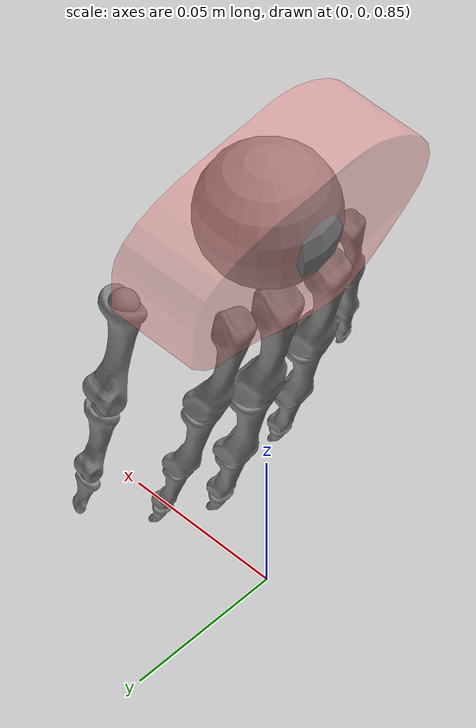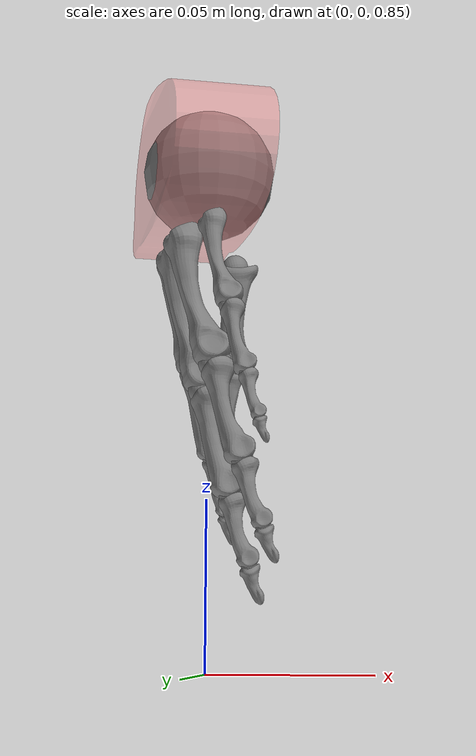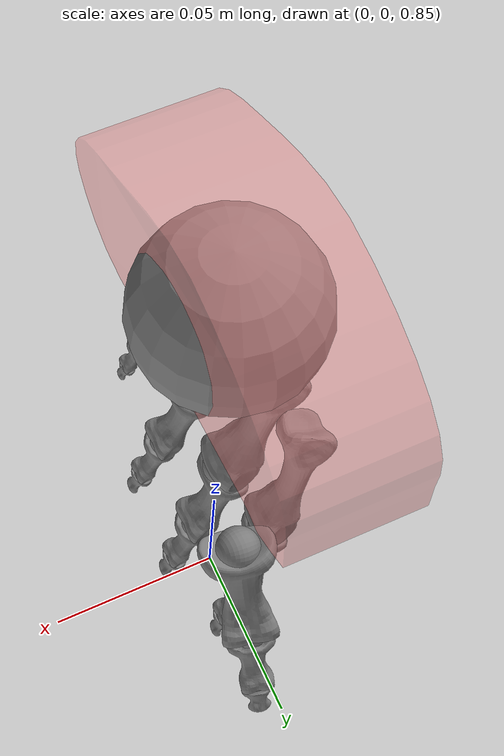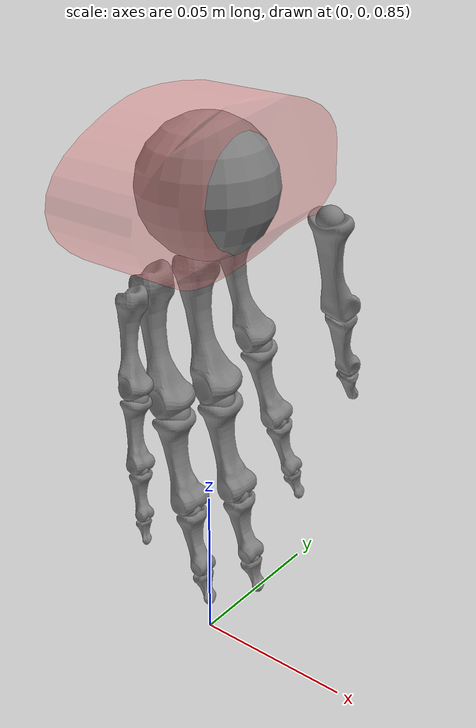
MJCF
<mujoco model="hand">
  <size memory="1G" />

  <compiler angle="radian" />

  <option solver="CG" tolerance="1e-6" timestep=".0014" integrator="implicitfast" jacobian="sparse"
    noslip_iterations="4">
  </option>

  <option cone="elliptic" impratio="100" />
  <option>
    <flag passive="disable" />
  </option>

  <visual>
    <global offwidth="1920" offheight="1080" />
    <map znear="0.001" />
    <scale jointlength="8" jointwidth="0.5" framelength="2" framewidth="0.3" />
  </visual>

  <statistic meansize="0.01" extent="1" />

  <default>
    <joint limited="true" range="0 1.8" solreflimit="0.01 1" solimplimit="0.9 0.99 0.01 "
      stiffness="0.1"
      armature="0.0001" damping="0.01" />
    <geom friction="0.9" solref="0.01 1" solimp="0.95 0.99 0.001" />
    <tendon rgba="0.5 0 0 1" />
    <general actlimited="true" actrange="0 1.7" />
    <default class="collision_primitive">
      <geom type="capsule" contype="1" conaffinity="1" condim="1" group="3" rgba="0 0.5 0.5 1"
        density="300" friction="1 1 0.0001" />
    </default>
    <default class="bone">
      <geom type="mesh" contype="0" conaffinity="0" group="5" rgba="0.5 0.5 0.5 1" density="1100" />
      <default class="light_bone">
        <geom density="300" />
      </default>
    </default>
    <default class="finger">
      <joint group="1" pos="0.012 0 0.01" armature="0.01" damping="3" />
      <default class="f">
        <joint range="-17.5 61.25" />
      </default>
    </default>
    <default class="phantom">
      <mesh scale="3 3 3" />
      <default class="visual">
        <geom group="2" type="mesh" contype="0" conaffinity="0" />
      </default>
      <default class="collision">
        <geom group="2" type="mesh" />
      </default>
    </default>
  </default>

  <contact>
    <exclude body1="Left_Index_4.stl" body2="Left_Thumb_3.stl" />
    <exclude body1="Left_Index_4.stl" body2="Left_Thumb_2.stl" />
  </contact>

  <extension>
    <plugin plugin="mujoco.elasticity.solid" />
  </extension>

  <asset>
    <texture name="//unnamed_texture_0" type="skybox" builtin="gradient" rgb1="0.6 0.8 0.9"
      rgb2="0 0 0" width="64" height="64" />
    <texture name="grid" type="2d" builtin="checker" rgb1="0.1 0.2 0.3" rgb2="0.2 0.3 0.4"
      mark="edge" markrgb="0.2 0.3 0.4" width="300" height="300" />
    <material name="grid" texture="grid" texrepeat="1 1" texuniform="true" reflectance="0.2" />
    <mesh name="Annular_1.stl" file="Index_bones/Annular_1.stl" />
    <mesh name="Annular_2.stl" file="Index_bones/Annular_2.stl" />
    <mesh name="Annular_3.stl" file="Index_bones/Annular_3.stl" />
    <mesh name="Annular_4.stl" file="Index_bones/Annular_4.stl" />
    <mesh name="Annular_J1.stl" file="Index_bones/Annular_J1.stl" />
    <mesh name="Annular_J2.stl" file="Index_bones/Annular_J2.stl" />
    <mesh name="Annular_J3.stl" file="Index_bones/Annular_J3.stl" />
    <mesh name="Index_1.stl" file="Index_bones/Index_1.stl" />
    <mesh name="Index_2.stl" file="Index_bones/Index_2.stl" />
    <mesh name="Index_3.stl" file="Index_bones/Index_3.stl" />
    <mesh name="Index_4.stl" file="Index_bones/Index_4.stl" />
    <mesh name="Index_J1.stl" file="Index_bones/Index_J1.stl" />
    <mesh name="Index_J2.stl" file="Index_bones/Index_J2.stl" />
    <mesh name="Index_J3.stl" file="Index_bones/Index_J3.stl" />
    <mesh name="J1.stl" file="Index_bones/J1.stl" />
    <mesh name="J2.stl" file="Index_bones/J2.stl" />
    <mesh name="J3.stl" file="Index_bones/J3.stl" />
    <mesh name="Middle_1.stl" file="Index_bones/Middle_1.stl" />
    <mesh name="Middle_2.stl" file="Index_bones/Middle_2.stl" />
    <mesh name="Middle_3.stl" file="Index_bones/Middle_3.stl" />
    <mesh name="Middle_4.stl" file="Index_bones/Middle_4.stl" />
    <mesh name="Middle_J1.stl" file="Index_bones/Middle_J1.stl" />
    <mesh name="Middle_J2.stl" file="Index_bones/Middle_J2.stl" />
    <mesh name="Middle_J3.stl" file="Index_bones/Middle_J3.stl" />
    <mesh name="Palm.stl" file="Index_bones/Palm.stl" />
    <mesh name="Pinky_1.stl" file="Index_bones/Pinky_1.stl" />
    <mesh name="Pinky_2.stl" file="Index_bones/Pinky_2.stl" />
    <mesh name="Pinky_3.stl" file="Index_bones/Pinky_3.stl" />
    <mesh name="Pinky_4.stl" file="Index_bones/Pinky_4.stl" />
    <mesh name="Pinky_J1.stl" file="Index_bones/Pinky_J1.stl" />
    <mesh name="Pinky_J2.stl" file="Index_bones/Pinky_J2.stl" />
    <mesh name="Pinky_J3.stl" file="Index_bones/Pinky_J3.stl" />
    <mesh name="Thumb_1.stl" file="Index_bones/Thumb_1.stl" />
    <mesh name="Thumb_2.stl" file="Index_bones/Thumb_2.stl" />
    <mesh name="Thumb_3.stl" file="Index_bones/Thumb_3.stl" />
    <mesh name="Thumb_J1.stl" file="Index_bones/Thumb_J1.stl" />
    <mesh name="Thumb_J2.stl" file="Index_bones/Thumb_J2.stl" />
    <mesh name="Thumb_J3.stl" file="Index_bones/Thumb_J3.stl" />

    <!-- Abdomen phantom -->
    <material name="aorta"
      rgba="1.000000 0.750000 0.750000 1.000000" />
    <material name="cava"
      rgba="0.500000 0.500000 1.000000 1.000000" />
    <material name="fat" specular="0.25" shininess="0.1"
      rgba="1.000000 1.000000 0.650000 1.000000" />
    <material name="inner_spine"
      rgba="1.000000 1.000000 1.000000 1.000000" />
    <material name="liver"
      rgba="0.500000 0.250000 0.250000 1.000000" />
    <material name="muscle"
      rgba="1.000000 0.500000 0.500000 1.000000" />
    <material name="outer_spine"
      rgba="1.000000 1.000000 0.850000 1.000000" />
    <material name="portal_vein"
      rgba="0.750000 0.250000 0.250000 1.000000" />
    <material name="ribs"
      rgba="1.000000 1.000000 0.850000 1.000000" />
    <material name="right_kidney"
      rgba="0.800000 0.400000 0.400000 1.000000" />
    <mesh class="phantom" file="phantom-assets/right_kidney.obj" />
    <mesh class="phantom" file="phantom-assets/ribs.obj" />
    <mesh class="phantom" file="phantom-assets/portal_vein.obj" />
    <mesh class="phantom" file="phantom-assets/outer_spine.obj" />
    <mesh class="phantom" file="phantom-assets/muscle.obj" />
    <mesh class="phantom" file="phantom-assets/liver.obj" />
    <mesh class="phantom" file="phantom-assets/inner_spine.obj" />
    <mesh class="phantom" file="phantom-assets/fat.obj" />
    <mesh class="phantom" file="phantom-assets/cava.obj" />
    <mesh class="phantom" file="phantom-assets/aorta.obj" />
  </asset>

  <equality>
    <weld body1="left_hand_mocap" body2="Left_Free" />
  </equality>

  <worldbody>
    <light name="//unnamed_light_0" directional="true" castshadow="false" pos="0 0 5"
      diffuse="0.4 0.4 0.4" specular="0.1 0.1 0.1" />
    <light name="//unnamed_light_1" pos="0 0 4" diffuse="0.6 0.6 0.6" specular="0.2 0.2 0.2" />
    <geom name="floor" type="plane" conaffinity="1" size="10 10 0.1" material="grid" />

    <body name="left_hand_mocap" mocap="true" pos="0 0 1.02">
    </body>
    <body name="Left_Free" pos="0 0 1">
      <freejoint name="Left_Freejoint" />
      <geom type="sphere" size=".02" contype="0" conaffinity="0" />
      <body name="Left_Palm" pos="0 0 0">
        <body name="Left_Palm_Left" pos="0 0 0" euler="0 -1.57 -1.57">
          <geom name="Left_Palm2" type="mesh" contype="0" conaffinity="0" rgba="1 0.5 0.5 0.4"
            mesh="Palm.stl" euler="0 3.14 0" />
          <geom name="Left_Palm_collision" class="collision_primitive" type="box"
            size="0.006 0.033 0.026" pos="0.005 -0.025 0.005" euler="-1.4 0 1.6" group="5" />
          <body name="left_hand_palm" pos="0 0 0">
            <site name="root" rgba="0 1 0 1" size="0.01" />
            <light name="light" mode="trackcom" pos="0 0 3" />

            <body name="Left_Index_1.stl" pos="-0.02226 -0.03852 0.004734">
              <geom name="Left_Index_1.stl" class="bone" group="1" pos="0.02226 0.03852 0.004734"
                mesh="Index_1.stl" euler="0 3.14 0" />

              <body name="Left_Index_J1.stl" pos="-0.00227 -0.01802 -0.004302">
                <geom name="Left_Index_J1.stl" class="bone" group="1"
                  pos="-0.02453 0.05654 -0.009037"
                  mesh="Index_J1.stl" />
                <body name="Left_Index_2.stl" pos="-0.001246 -0.0129 -0.002785">
                  <geom name="Left_Index_2.stl" class="bone" group="1" pos="0.02578 0.06944 0.01182"
                    mesh="Index_2.stl" euler="0 3.14 0" />
                  <geom name="Left_Index_2.stl_collision" class="collision_primitive"
                    size="0.005752 0.008655" pos="0 0 0" euler="1.84 -0.12 1.6" />

                  <body name="Left_Index_J2.stl" pos="-0.001513 -0.01288 -0.003559">
                    <geom name="Left_Index_J2.stl" class="bone" group="1"
                      pos="-0.02729 0.08233 -0.01538"
                      mesh="Index_J2.stl" />
                    <body name="Left_Index_3.stl" pos="-0.0009469 -0.008548 -0.002118">
                      <geom name="Left_Index_3.stl" class="bone" group="1"
                        pos="0.02824 0.09087 0.0175"
                        mesh="Index_3.stl" euler="0 3.14 0" />
                      <geom name="Left_Index_3.stl_collision" class="collision_primitive"
                        size="0.005 0.006655" pos="0 0 0" euler="1.84 -0.12 1.6" />

                      <body name="Left_Index_J3.stl" pos="-0.001143 -0.009198 -0.002695">
                        <geom name="Left_Index_J3.stl" class="bone" group="1"
                          pos="-0.02938 0.1001 -0.02019" mesh="Index_J3.stl" />
                        <body name="Left_Index_4.stl" pos="-0.0002737 -0.003719 -0.0008389">
                          <site name="LeftforSensor" type="capsule" group="3" size="0.004 0.004014"
                            pos="0 -0.001 -0.002" euler="1.84 -0.12 1.6" />
                          <geom name="Left_Index_4.stl" class="bone" group="1"
                            pos="0.02966 0.1038 0.02103" mesh="Index_4.stl" euler="0 3.14 0" />
                          <geom name="Left_Index_4.stl_collision" class="collision_primitive"
                            size="0.004 0.004014" pos="0 0 0" euler="1.84 -0.12 1.6" />

                        </body>
                        <joint name="Left_Index_J3.stl" class="f" pos="0 0 0" axis="1 0 0" />
                      </body>
                    </body>
                    <joint name="Left_Index_J2.stl" class="f" pos="0 0 0" axis="1 0 0" />
                  </body>
                </body>
                <joint name="Left_Index_J1.stl" class="f" pos="0 0 0" axis="1 0 0" />
              </body>
            </body>
          </body>
          <body name="left_hand_palm_2" pos="0 0 0">
            <body name="Left_Middle_1.stl" pos="-0.00489 -0.0447 0.004943">
              <geom name="Left_Middle_1.stl" class="bone" group="1" pos="0.00489 0.0447 0.004943"
                mesh="Middle_1.stl" euler="0 3.14 0" />

              <body name="Left_Middle_J1.stl" pos="0.001068 -0.02163 -0.005161">
                <geom name="Left_Middle_J1.stl" class="bone" group="1"
                  pos="-0.003822 0.06633 -0.0101"
                  mesh="Middle_J1.stl" />
                <body name="Left_Middle_2.stl" pos="-0.000714 -0.0154 -0.003356">
                  <geom name="Left_Middle_2.stl" class="bone" group="1"
                    pos="0.004536 0.08173 0.01346"
                    mesh="Middle_2.stl" euler="0 3.14 0" />
                  <geom name="Left_Middle_2.stl_collision" class="collision_primitive"
                    size="0.006232 0.01032" pos="0 0 0" euler="1.84 0 1.6" />

                  <body name="Left_Middle_J2.stl" pos="7.813e-05 -0.01543 -0.00427">
                    <geom name="Left_Middle_J2.stl" class="bone" group="1"
                      pos="-0.004457 0.09716 -0.01773"
                      mesh="Middle_J2.stl" />
                    <body name="Left_Middle_3.stl" pos="0.0001241 -0.01023 -0.002545">
                      <geom name="Left_Middle_3.stl" class="bone" group="1"
                        pos="0.004333 0.1074 0.02027"
                        mesh="Middle_3.stl" euler="0 3.14 0" />
                      <geom name="Left_Middle_3.stl_collision" class="collision_primitive"
                        size="0.0055 0.00792" pos="0 0 0" euler="1.84 0 1.6" />

                      <body name="Left_Middle_J3.stl" pos="-2.234e-05 -0.01103 -0.00323">
                        <geom name="Left_Middle_J3.stl" class="bone" group="1"
                          pos="-0.004356 0.1184 -0.0235" mesh="Middle_J3.stl" />
                        <body name="Left_Middle_4.stl" pos="0.000219 -0.004432 -0.001011">
                          <site name="LeftforSensorMiddle_4.stl" type="capsule" group="3"
                            size="0.0045 0.004789"
                            pos="0 -0.001 -0.002" euler="1.84 0 1.6" />
                          <geom name="Left_Middle_4.stl" class="bone" group="1"
                            pos="0.004137 0.1229 0.02452" mesh="Middle_4.stl" euler="0 3.14 0" />
                          <geom name="Left_Middle_4.stl_collision" class="collision_primitive"
                            size="0.0045 0.004789" pos="0 0 0" euler="1.84 0 1.6" />
                        </body>
                        <joint name="Left_Middle_J3.stl" class="f" pos="0 0 0" axis="1 0 0" />
                      </body>
                    </body>
                    <joint name="Left_Middle_J2.stl" class="f" pos="0 0 0" axis="1 0 0" />
                  </body>
                </body>
                <joint name="Left_Middle_J1.stl" class="f" pos="0 0 0" axis="1 0 0" />
              </body>
            </body>
          </body>
          <body name="left_hand_palm_3" pos="0 0 0">
            <body name="Left_Annular_1.stl" pos="0.01433 -0.0433 0.00541">
              <geom name="Left_Annular_1.stl" class="bone" group="1" pos="-0.01433 0.0433 0.00541"
                mesh="Annular_1.stl" euler="0 3.14 0" />

              <body name="Left_Annular_J1.stl" pos="0.001102 -0.01956 -0.00523">
                <geom name="Left_Annular_J1.stl" class="bone" group="1"
                  pos="0.01544 0.06286 -0.01064"
                  mesh="Annular_J1.stl" />
                <body name="Left_Annular_2.stl" pos="0.001203 -0.01394 -0.003432">
                  <geom name="Left_Annular_2.stl" class="bone" group="1"
                    pos="-0.01664 0.0768 0.01407"
                    mesh="Annular_2.stl" euler="0 3.14 0" />
                  <geom name="Left_Annular_2.stl_collision" class="collision_primitive"
                    size="0.005781 0.009836" pos="0 0 0" euler="1.84 0.05 1.6" />

                  <body name="Left_Annular_J2.stl" pos="0.00107 -0.01442 -0.004259">
                    <geom name="Left_Annular_J2.stl" class="bone" group="1"
                      pos="0.01771 0.09122 -0.01833"
                      mesh="Annular_J2.stl" />
                    <body name="Left_Annular_3.stl" pos="0.000481 -0.00878 -0.002575">
                      <geom name="Left_Annular_3.stl" class="bone" group="1"
                        pos="-0.01819 0.1 0.02091"
                        mesh="Annular_3.stl" euler="0 3.14 0" />
                      <geom name="Left_Annular_3.stl_collision" class="collision_primitive"
                        size="0.005 0.007487" pos="0 0 0" euler="1.84 0.05 1.6" />

                      <body name="Left_Annular_J3.stl" pos="0.0005647 -0.009967 -0.003212">
                        <geom name="Left_Annular_J3.stl" class="bone" group="1"
                          pos="0.01875 0.11 -0.02412"
                          mesh="Annular_J3.stl" />
                        <body name="Left_Annular_4.stl" pos="0.0004367 -0.003999 -0.00103">
                          <site name="LeftforSensorAnnular_4.stl" type="capsule" group="3"
                            size="0.004 0.004495"
                            pos="0 -0.001 -0.002" euler="1.84 0.05 1.6" />
                          <geom name="Left_Annular_4.stl" class="bone" group="1"
                            pos="-0.01919 0.114 0.02515" mesh="Annular_4.stl" euler="0 3.14 0" />
                          <geom name="Left_Annular_4.stl_collision" class="collision_primitive"
                            size="0.004 0.004495" pos="0 0 0" euler="1.84 0.05 1.6" />
                        </body>
                        <joint name="Left_Annular_J3.stl" class="f" pos="0 0 0" axis="1 0 0" />
                      </body>
                    </body>
                    <joint name="Left_Annular_J2.stl" class="f" pos="0 0 0" axis="1 0 0" />
                  </body>
                </body>
                <joint name="Left_Annular_J1.stl" class="f" pos="0 0 0" axis="1 0 0" />
              </body>
            </body>
          </body>
          <body name="left_hand_palm_4" pos="0 0 0">
            <body name="Left_Pinky_1.stl" pos="0.02988 -0.03668 0.001252">
              <geom name="Left_Pinky_1.stl" class="bone" group="1" pos="-0.02988 0.03668 0.001252"
                mesh="Pinky_1.stl" euler="0 3.14 0" />

              <body name="Left_Pinky_J1.stl" pos="0.002258 -0.01362 -0.002654">
                <geom name="Left_Pinky_J1.stl" class="bone" group="1" pos="0.03214 0.0503 -0.003906"
                  mesh="Pinky_J1.stl" />
                <body name="Left_Pinky_2.stl" pos="0.001899 -0.009659 -0.001693">
                  <geom name="Left_Pinky_2.stl" class="bone" group="1"
                    pos="-0.03404 0.05996 0.005599"
                    mesh="Pinky_2.stl" euler="0 3.14 0" />
                  <geom name="Left_Pinky_2.stl_collision" class="collision_primitive"
                    size="0.004725 0.006113" pos="0 0 0" euler="1.84 0.12 1.6" />

                  <body name="Left_Pinky_J2.stl" pos="0.001679 -0.009733 -0.002265">
                    <geom name="Left_Pinky_J2.stl" class="bone" group="1"
                      pos="0.03572 0.06969 -0.007864"
                      mesh="Pinky_J2.stl" />
                    <body name="Left_Pinky_3.stl" pos="0.001162 -0.006436 -0.001322">
                      <geom name="Left_Pinky_3.stl" class="bone" group="1"
                        pos="-0.03688 0.07612 0.009186"
                        mesh="Pinky_3.stl" euler="0 3.14 0" />
                      <geom name="Left_Pinky_3.stl_collision" class="collision_primitive"
                        size="0.004 0.004" pos="0 0 0" euler="1.84 0.12 1.6" />

                      <body name="Left_Pinky_J3.stl" pos="0.001148 -0.006969 -0.00173">
                        <geom name="Left_Pinky_J3.stl" class="bone" group="1"
                          pos="0.03803 0.08309 -0.01092" mesh="Pinky_J3.stl" />
                        <body name="Left_Pinky_4.stl" pos="0.0006076 -0.002766 -0.0005188">
                          <site name="LeftforSensorPinky_4.stl" type="capsule" group="3"
                            size="0.0035 0.002884"
                            pos="0 -0.001 -0.0015" euler="1.84 0.12 1.6" />
                          <geom name="Left_Pinky_4.stl" class="bone" group="1"
                            pos="-0.03864 0.08586 0.01144" mesh="Pinky_4.stl" euler="0 3.14 0" />
                          <geom name="Left_Pinky_4.stl_collision" class="collision_primitive"
                            size="0.0035 0.002884" pos="0 0 0" euler="1.84 0.12 1.6" />
                        </body>
                        <joint name="Left_Pinky_J3.stl" class="f" pos="0 0 0" axis="1 0 0" />
                      </body>
                    </body>
                    <joint name="Left_Pinky_J2.stl" class="f" pos="0 0 0" axis="1 0 0" />
                  </body>
                </body>
                <joint name="Left_Pinky_J1.stl" class="f" pos="0 0 0" axis="1 0 0" />
              </body>
            </body>
          </body>
          <body name="left_hand_palm_5" pos="0 0 0">
            <body name="Left_Thumb_J1.stl" pos="-0.03785 -0.01644 -0.01504">
              <geom name="Left_Thumb_J1.stl" class="bone" group="1" pos="-0.03785 0.01644 0.01504"
                mesh="Thumb_J1.stl" />
              <body name="Left_Thumb_1.stl" pos="-0.003528 -0.01538 0.0001513">
                <geom name="Left_Thumb_1.stl" class="bone" group="1" pos="0.04137 0.03181 -0.01519"
                  mesh="Thumb_1.stl" euler="0 3.14 0" />
                <geom name="Left_Thumb_1.stl_collision" class="collision_primitive"
                  size="0.006 0.01" euler="-1.54 0.3 1" />

                <body name="Left_Thumb_J2.stl" pos="-0.005477 -0.01727 0.0001513">
                  <geom name="Left_Thumb_J2.stl" class="bone" group="1"
                    pos="-0.04685 0.04908 0.01535"
                    mesh="Thumb_J2.stl" />
                  <body name="Left_Thumb_2.stl" pos="-0.00245 -0.01045 7.773e-05">
                    <geom name="Left_Thumb_2.stl" class="bone" group="1"
                      pos="0.0493 0.05954 -0.01542"
                      mesh="Thumb_2.stl" euler="0 3.14 0" />
                    <geom name="Left_Thumb_2.stl_collision" class="collision_primitive"
                      size="0.005 0.006" euler="-1.54 0.3 1" />

                    <body name="Left_Thumb_J3.stl" pos="-0.003281 -0.01252 6.956e-05">
                      <geom name="Left_Thumb_J3.stl" class="bone" group="1"
                        pos="-0.05258 0.07206 0.01549"
                        mesh="Thumb_J3.stl" />
                      <body name="Left_Thumb_3.stl" pos="-0.001609 -0.004174 -3.497e-05">
                        <site name="LeftforSensorThumb_3.stl" type="capsule" group="3"
                          size="0.0042 0.005762" pos="0.002 0 0" euler="-1.54 0.3 1" />
                        <geom name="Left_Thumb_3.stl" class="bone" group="1"
                          pos="0.05419 0.07623 -0.01546"
                          mesh="Thumb_3.stl" euler="0 3.14 0" />
                        <geom name="Left_Thumb_3.stl_collision" class="collision_primitive"
                          type="capsule"
                          size="0.004 0.005" euler="-1.54 0.3 1" />
                      </body>
                      <joint name="Left_Thumb_J3.stl" class="f" pos="0 0 0" axis="0 0 1" />
                    </body>
                  </body>
                  <joint name="Left_Thumb_J2.stl" class="f" pos="0 0 0" axis="0 0 1" />
                </body>
              </body>
              <joint name="Left_Thumb_J1.stl" class="f" pos="0.01 0.01 0.01" axis="1 0 -0.1" />
            </body>
          </body>
        </body>
      </body>
    </body>

  </worldbody>

  <actuator>
    <intvelocity name="Left_Index_J1.stl" class="f" joint="Left_Index_J1.stl"
      kp="10000" kv="10" actrange="0 1.7" />
    <intvelocity name="Left_Index_J2.stl" class="f" joint="Left_Index_J2.stl"
      kp="10000" kv="10" actrange="0 1.7" />
    <intvelocity name="Left_Index_J3.stl" class="f" joint="Left_Index_J3.stl"
      kp="10000" kv="10" actrange="0 1.7" />
    <intvelocity name="Left_Middle_J1.stl" class="f" joint="Left_Middle_J1.stl"
      kp="10000" kv="10" actrange="0 1.7" />
    <intvelocity name="Left_Middle_J2.stl" class="f" joint="Left_Middle_J2.stl"
      kp="10000" kv="10" actrange="0 1.7" />
    <intvelocity name="Left_Middle_J3.stl" class="f" joint="Left_Middle_J3.stl"
      kp="10000" kv="10" actrange="0 1.7" />
    <intvelocity name="Left_Annular_J1.stl" class="f" joint="Left_Annular_J1.stl"
      kp="10000" kv="10" actrange="0 1.7" />
    <intvelocity name="Left_Annular_J2.stl" class="f" joint="Left_Annular_J2.stl"
      kp="10000" kv="10" actrange="0 1.7" />
    <intvelocity name="Left_Annular_J3.stl" class="f" joint="Left_Annular_J3.stl"
      kp="10000" kv="10" actrange="0 1.7" />
    <intvelocity name="Left_Pinky_J1.stl" class="f" joint="Left_Pinky_J1.stl"
      kp="10000" kv="10" actrange="0 1.7" />
    <intvelocity name="Left_Pinky_J2.stl" class="f" joint="Left_Pinky_J2.stl"
      kp="10000" kv="10" actrange="0 1.7" />
    <intvelocity name="Left_Pinky_J3.stl" class="f" joint="Left_Pinky_J3.stl"
      kp="10000" kv="10" actrange="0 1.7" />
    <intvelocity name="Left_Thumb_J1.stl" class="f" joint="Left_Thumb_J1.stl"
      kp="10000" kv="10" actrange="0 1.7" />
    <intvelocity name="Left_Thumb_J2.stl" class="f" joint="Left_Thumb_J2.stl"
      kp="10000" kv="10" actrange="0 2" />
    <intvelocity name="Left_Thumb_J3.stl" class="f" joint="Left_Thumb_J3.stl"
      kp="10000" kv="10" actrange="0 2" />
  </actuator>

  <sensor>
    <touch name="left_fingertip_index" site="LeftforSensor" />
    <touch name="left_fingertip_middle" site="LeftforSensorMiddle_4.stl" />
    <touch name="left_fingertip_annular" site="LeftforSensorAnnular_4.stl" />
    <touch name="left_fingertip_pinky" site="LeftforSensorPinky_4.stl" />
    <touch name="left_fingertip_thumb" site="LeftforSensorThumb_3.stl" />
  </sensor>

</mujoco>
